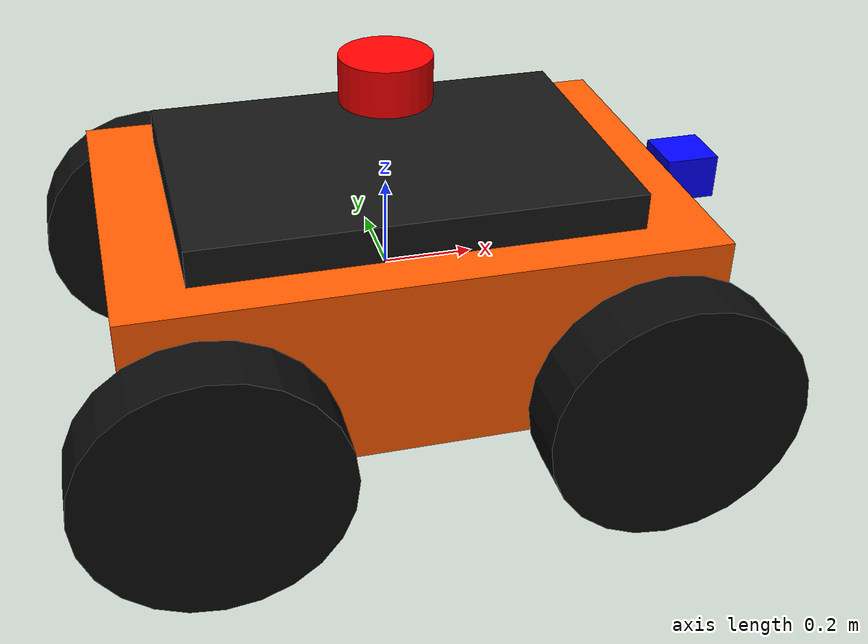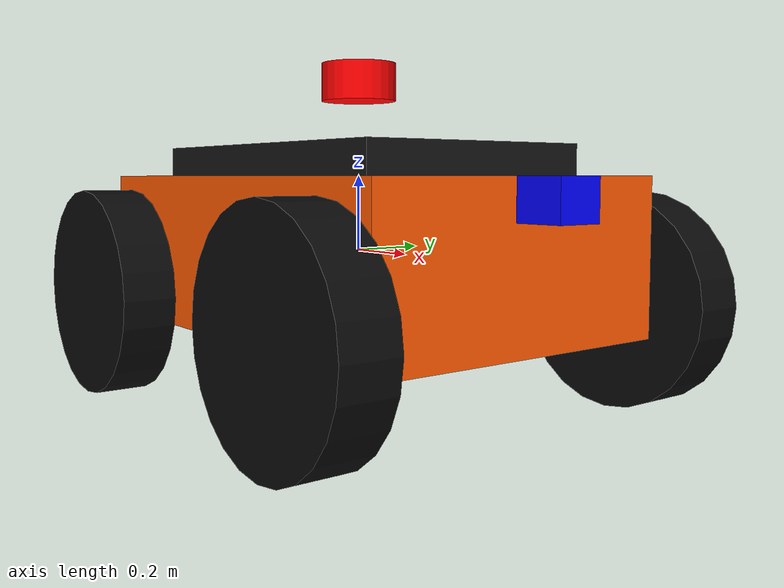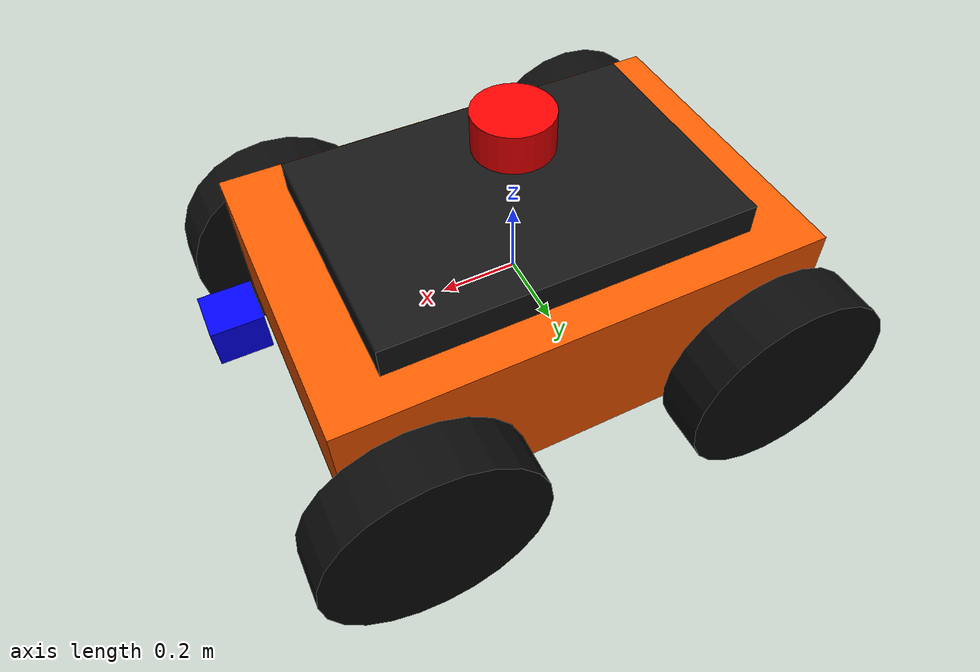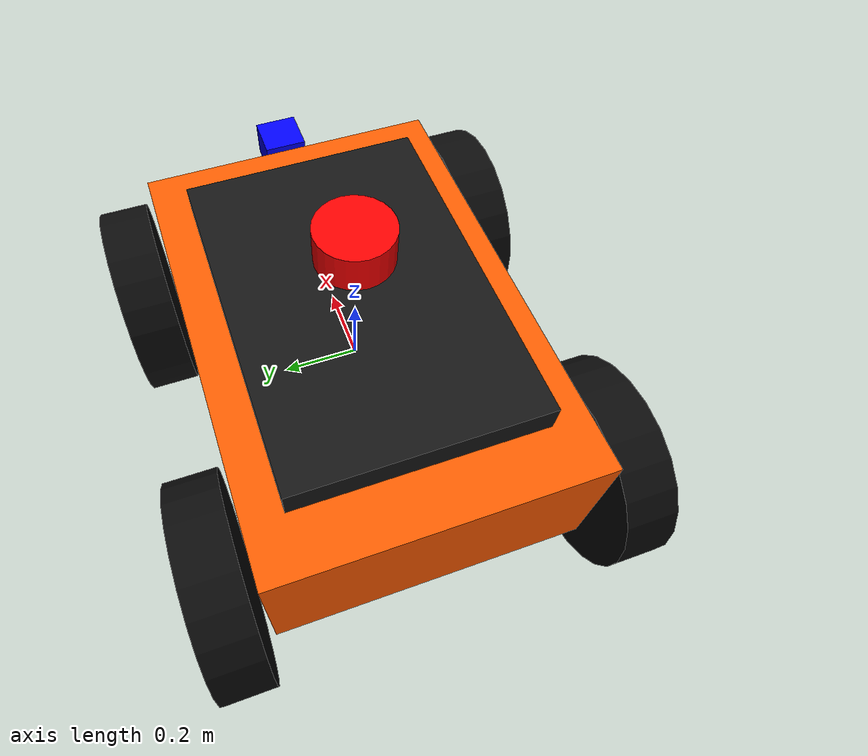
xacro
<?xml version="1.0" ?>
<robot name="bot" xmlns:xacro="http://ros.org/wiki/xacro">

  <xacro:property name="chassis_length" value="1.25"/>
  <xacro:property name="chassis_width" value="0.85"/>
  <xacro:property name="chassis_height" value="0.40"/>
  <xacro:property name="ground_clearance" value="0.20"/>
  <xacro:property name="payload_deck_height" value="0.08"/>
  <xacro:property name="payload_deck_length" value="0.95"/>
  <xacro:property name="payload_deck_width" value="0.65"/>
  <xacro:property name="base_mass" value="45.0"/>
  <xacro:property name="wheel_radius" value="0.28"/>
  <xacro:property name="wheel_width" value="0.14"/>
  <xacro:property name="wheel_mass" value="4.0"/>
  <xacro:property name="wheelbase" value="0.95"/>
  <xacro:property name="track_width" value="1.04"/>
  <xacro:property name="lidar_mast_height" value="0.25"/>
  <xacro:property name="base_z" value="${ground_clearance + chassis_height / 2.0}"/>
  <xacro:property name="wheel_z" value="${wheel_radius - base_z}"/>

  <xacro:macro name="wheel_link" params="name">
    <link name="${name}">
      <inertial>
        <mass value="${wheel_mass}"/>
        <inertia
          ixx="${wheel_mass * (3 * wheel_radius * wheel_radius + wheel_width * wheel_width) / 12.0}"
          iyy="${wheel_mass * (3 * wheel_radius * wheel_radius + wheel_width * wheel_width) / 12.0}"
          izz="${wheel_mass * wheel_radius * wheel_radius / 2.0}"
          ixy="0.0" ixz="0.0" iyz="0.0"/>
      </inertial>

      <visual>
        <geometry>
          <cylinder radius="${wheel_radius}" length="${wheel_width}"/>
        </geometry>
        <material name="offroad_tire">
          <color rgba="0.04 0.04 0.04 1"/>
        </material>
      </visual>

      <collision>
        <geometry>
          <cylinder radius="${wheel_radius}" length="${wheel_width}"/>
        </geometry>
      </collision>
    </link>
  </xacro:macro>

  <xacro:macro name="wheel_contact" params="link">
    <gazebo reference="${link}">
      <mu1>1.2</mu1>
      <mu2>0.8</mu2>
      <kp>500000.0</kp>
      <kd>50.0</kd>
      <minDepth>0.001</minDepth>
      <maxVel>0.2</maxVel>
      <fdir1>1 0 0</fdir1>
    </gazebo>
  </xacro:macro>

<link name="base_link">
  <visual>
    <geometry>
      <box size="${chassis_length} ${chassis_width} ${chassis_height}"/>
    </geometry>
    <material name="high_visibility_orange">
      <color rgba="1.0 0.35 0.0 1" />
    </material>
  </visual>

  <visual>
    <origin xyz="0 0 ${chassis_height / 2.0 + payload_deck_height / 2.0}" rpy="0 0 0"/>
    <geometry>
      <box size="${payload_deck_length} ${payload_deck_width} ${payload_deck_height}"/>
    </geometry>
    <material name="payload_deck_black">
      <color rgba="0.08 0.08 0.08 1"/>
    </material>
  </visual>

  <collision>
    <geometry>
      <box size="${chassis_length} ${chassis_width} ${chassis_height}"/>
    </geometry>
  </collision>

  <collision>
    <origin xyz="0 0 ${chassis_height / 2.0 + payload_deck_height / 2.0}" rpy="0 0 0"/>
    <geometry>
      <box size="${payload_deck_length} ${payload_deck_width} ${payload_deck_height}"/>
    </geometry>
  </collision>

  <inertial>
    <mass value="${base_mass}"/>
    <inertia
      ixx="${base_mass * (chassis_width * chassis_width + chassis_height * chassis_height) / 12.0}"
      iyy="${base_mass * (chassis_length * chassis_length + chassis_height * chassis_height) / 12.0}"
      izz="${base_mass * (chassis_length * chassis_length + chassis_width * chassis_width) / 12.0}"
      ixy="0.0" ixz="0.0" iyz="0.0"/>
  </inertial>
</link>

  <xacro:wheel_link name="wheel_front_right"/>
  <xacro:wheel_link name="wheel_front_left"/>
  <xacro:wheel_link name="wheel_back_right"/>
  <xacro:wheel_link name="wheel_back_left"/>

  <link name="rgbd_camera">
    <inertial>
            <mass value="0.05" />
            <inertia ixx="0.01" ixy="0.0" ixz="0"
            iyy="0.01" iyz="0" izz="0.01" />
    </inertial>

    <visual>
      <origin xyz="0 0 0" rpy="0 0 0"/>
      <geometry>
        <box size="0.12 0.12 0.10"/>
      </geometry>
      <material name="blue">
        <color rgba="0 0 1 1"/>
      </material>
    </visual>

    <collision>
      <geometry>
          <box size="0.12 0.12 0.10"/>
      </geometry>
    </collision>
  </link>

  <joint name="camera_joint" type="fixed">
    <origin xyz="${chassis_length / 2.0 + 0.08} 0 ${chassis_height / 2.0 - 0.05}" rpy="0 0 0"/>
    <parent link="base_link"/>
    <child link="rgbd_camera"/>
    <axis xyz="0.0 0 0"/>
  </joint>

  <joint type="fixed" name="camera_optical_joint">
    <origin xyz="0 0 0" rpy="-1.5707 0 -1.5707"/>
    <child link="camera_link_optical"/>
    <parent link="rgbd_camera"/>
  </joint>

  <link name="camera_link_optical">
  </link>

  <gazebo reference="rgbd_camera">
    <sensor name="rgbd_camera" type="rgbd_camera">
      <!-- shortcut: RGB-D is disabled during LiDAR terrain validation; re-enable with its bridge for person tracking. -->
      <camera>
        <horizontal_fov>1.10</horizontal_fov>
        <image>
          <width>960</width>
          <height>540</height>
        </image>
        <clip>
          <near>0.3</near>
          <far>15</far>
        </clip>
        <optical_frame_id>camera_link_optical</optical_frame_id>
      </camera>
      <always_on>0</always_on>
      <update_rate>20</update_rate>
      <visualize>false</visualize>
      <topic>camera</topic>
      <gz_frame_id>rgbd_camera</gz_frame_id>
    </sensor>
  </gazebo>

  <link name="laser_link">
    <inertial>
            <mass value="0.5" />
            <inertia ixx="0.01" ixy="0.0" ixz="0"
            iyy="0.01" iyz="0" izz="0.01" />
    </inertial>

    <visual>
      <geometry>
        <cylinder radius="0.1" length="0.1"/>
      </geometry>
      <material name="red">
        <color rgba="1 0 0  1"/>
      </material>
    </visual>

    <collision>
      <geometry>
        <cylinder radius="0.1" length="0.1"/>
      </geometry>
    </collision>
  </link>

  <joint name="laser_joint" type="fixed">
    <origin xyz="0 0 ${chassis_height / 2.0 + lidar_mast_height}" rpy="0 0 0"/>
    <parent link="base_link"/>
    <child link="laser_link"/>
    <axis xyz="0.0 0.0 1.0"/>

  </joint>

  <gazebo reference="laser_link">
    <sensor type="gpu_lidar" name="generic_lidar_sensor">
      <update_rate>5</update_rate>
      <visualize>false</visualize>
      <always_on>true</always_on>
      <frame_id>laser_link</frame_id>
      <gz_frame_id>laser_link</gz_frame_id>
      <topic>/lidar_3d</topic>
      <lidar>
        <scan>
          <horizontal>
            <samples>256</samples>
            <resolution>1.0</resolution>
            <min_angle>-3.1415926</min_angle>
            <max_angle>3.1415926</max_angle>
          </horizontal>
          <vertical>
            <samples>16</samples>
            <resolution>1.0</resolution>
            <min_angle>-0.261799</min_angle>
            <max_angle>0.261799</max_angle>
          </vertical>
        </scan>
        <range>
          <min>0.5</min>
          <max>30.0</max>
          <resolution>0.01</resolution>
        </range>
        <noise>
          <type>gaussian</type>
          <mean>0.0</mean>
          <stddev>0.01</stddev>
        </noise>
      </lidar>
    </sensor>
    <sensor type="gpu_lidar" name="generic_twold_lidar_sensor">
      <topic>/scan</topic>
      <frame_id>laser_link</frame_id>
      <gz_frame_id>laser_link</gz_frame_id>
      <update_rate>50.0</update_rate>
      <ray>
        <scan>
          <horizontal>
            <samples>270</samples>
            <resolution>1</resolution>
            <min_angle>-${pi*0.75}</min_angle>
            <max_angle>${pi*0.75}</max_angle>
          </horizontal>
        </scan>
        <range>
          <min>0.10</min>
          <max>8.0</max>
          <resolution>0.06</resolution>
        </range>
        <noise>
          <type>gaussian</type>
          <mean>0.0</mean>
          <stddev>0.02</stddev>
        </noise>
      </ray>
      <always_on>false</always_on>
      <visualize>false</visualize>
    </sensor>
  </gazebo>

  <joint name="navsat_joint" type="fixed">
    <origin xyz="0 0 0" rpy="0 0 0" />
    <parent link="base_link"/>
    <child link="navsat_link" />
  </joint>

  <link name="navsat_link">
  </link>

  <joint name="imu_joint" type="fixed">
    <origin xyz="0 0 0" rpy="0 0 0" />
    <parent link="base_link"/>
    <child link="imu_link" />
  </joint>

  <link name="imu_link">
  </link>

   <gazebo reference="imu_link">
     <sensor name="imu_sensor" type="imu">
      <topic>/imu</topic>
      <frame_id>imu_link</frame_id>
      <gz_frame_id>imu_link</gz_frame_id>
      <always_on>true</always_on>
      <update_rate>100</update_rate>
      <visualize>false</visualize>
     <imu>
     	<angular_velocity>
     	  <x>
     	    <noise type="gaussian">
              <mean>0.0</mean>
              <stddev>2e-4</stddev>
              <bias_mean>0.0000075</bias_mean>
              <bias_stddev>0.0000008</bias_stddev>
            </noise>
          </x>
          <y>
            <noise type="gaussian">
              <mean>0.0</mean>
              <stddev>2e-4</stddev>
              <bias_mean>0.0000075</bias_mean>
              <bias_stddev>0.0000008</bias_stddev>
            </noise>
          </y>
          <z>
            <noise type="gaussian">
              <mean>0.0</mean>
              <stddev>2e-4</stddev>
              <bias_mean>0.0000075</bias_mean>
              <bias_stddev>0.0000008</bias_stddev>
            </noise>
          </z>
        </angular_velocity>
        <linear_acceleration>
          <x>
            <noise type="gaussian">
              <mean>0.0</mean>
              <stddev>1.7e-2</stddev>
              <bias_mean>0.0</bias_mean>
              <bias_stddev>0.001</bias_stddev>
            </noise>
          </x>
          <y>
            <noise type="gaussian">
              <mean>0.0</mean>
              <stddev>1.7e-2</stddev>
              <bias_mean>0.0</bias_mean>
              <bias_stddev>0.001</bias_stddev>
            </noise>
          </y>
          <z>
            <noise type="gaussian">
              <mean>0.0</mean>
              <stddev>1.7e-2</stddev>
              <bias_mean>0.0</bias_mean>
              <bias_stddev>0.001</bias_stddev>
            </noise>
          </z>
        </linear_acceleration>
      </imu>
    </sensor>
    </gazebo>

  <gazebo reference="navsat_link">
    <sensor name="navsat" type="navsat">
      <always_on>1</always_on>
      <update_rate>1</update_rate>
      <topic>navsat</topic>
      <gz_frame_id>navsat_link</gz_frame_id>
    </sensor>
  </gazebo>

  <joint name="wheel_front_right_joint" type="continuous">
    <origin xyz="${wheelbase / 2.0} ${track_width / 2.0} ${wheel_z}" rpy="${-pi / 2.0} 0.0 0.0"/>
    <parent link="base_link"/>
    <child link="wheel_front_right"/>
    <axis xyz="0.0 0.0 1.0"/>
  </joint>

  <joint name="wheel_front_left_joint" type="continuous">
    <origin xyz="${wheelbase / 2.0} ${-track_width / 2.0} ${wheel_z}" rpy="${pi / 2.0} 0.0 0.0"/>
    <parent link="base_link"/>
    <child link="wheel_front_left"/>
    <axis xyz="0.0 0.0 -1.0"/>

  </joint>

  <joint name="wheel_back_right_joint" type="continuous">
    <origin xyz="${-wheelbase / 2.0} ${track_width / 2.0} ${wheel_z}" rpy="${-pi / 2.0} 0.0 0.0"/>
    <parent link="base_link"/>
    <child link="wheel_back_right"/>
    <axis xyz="0.0 0.0 1.0"/>

  </joint>

  <joint name="wheel_back_left_joint" type="continuous">
    <origin xyz="${-wheelbase / 2.0} ${-track_width / 2.0} ${wheel_z}" rpy="${pi / 2.0} 0.0 0.0"/>
    <parent link="base_link"/>
    <child link="wheel_back_left"/>
    <axis xyz="0.0 0.0 -1.0"/>

  </joint>

  <xacro:wheel_contact link="wheel_front_right"/>
  <xacro:wheel_contact link="wheel_front_left"/>
  <xacro:wheel_contact link="wheel_back_right"/>
  <xacro:wheel_contact link="wheel_back_left"/>

    <gazebo>
        <plugin filename="gz-sim-diff-drive-system" name="gz::sim::systems::DiffDrive">
          <left_joint>wheel_front_right_joint</left_joint>
          <left_joint>wheel_back_right_joint</left_joint>
          <right_joint>wheel_front_left_joint</right_joint>
          <right_joint>wheel_back_left_joint</right_joint>
          <wheel_separation>${track_width}</wheel_separation>
          <wheel_radius>${wheel_radius}</wheel_radius>
          <max_linear_acceleration>2.0</max_linear_acceleration>
          <max_angular_acceleration>2.0</max_angular_acceleration>
          <topic>/cmd_vel</topic>
        </plugin>
        <plugin filename="gz-sim-odometry-publisher-system" name="gz::sim::systems::OdometryPublisher">
          <odom_frame>odom</odom_frame>
          <robot_base_frame>base_link</robot_base_frame>
          <odom_publish_frequency>50</odom_publish_frequency>
          <odom_topic>/odom_gz</odom_topic>
          <dimensions>2</dimensions>
        </plugin>
        <plugin filename="gz-sim-imu-system" name="gz::sim::systems::Imu">
          <initial_orientation_as_reference>false</initial_orientation_as_reference>
        </plugin>
        <plugin filename="gz-sim-sensors-system" name="gz::sim::systems::Sensors">
          <render_engine>ogre2</render_engine>
        </plugin>
        <plugin
        filename="gz-sim-navsat-system"
        name="gz::sim::systems::NavSat">
      </plugin>
    </gazebo>

</robot>
